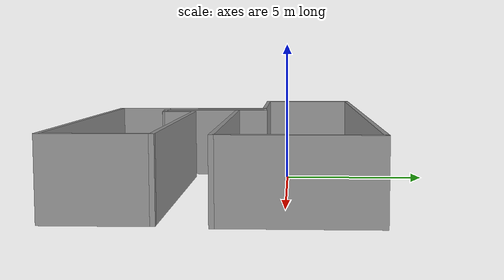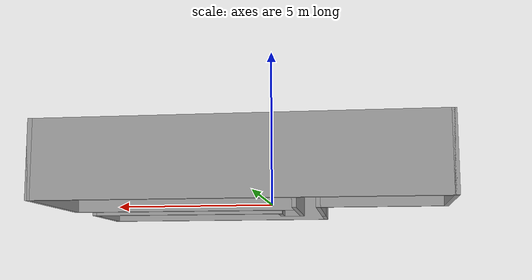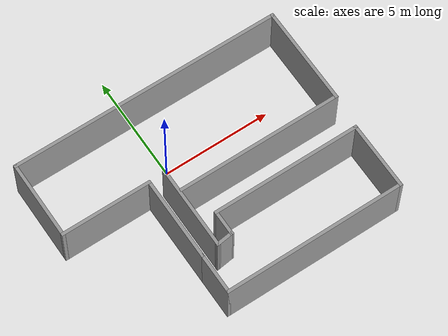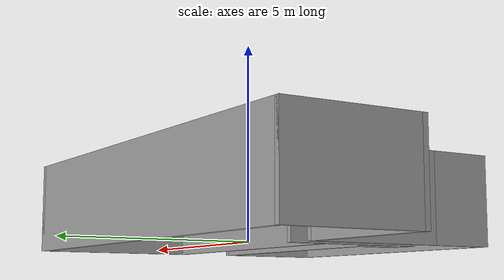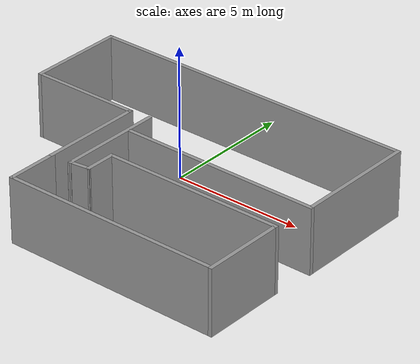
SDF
<?xml version='1.0'?>
<sdf version='1.7'>
  <model name='thin_wall_2'>
    <pose>0.79 -1.98 0 0 -0 0</pose>
    <link name='Wall_0'>
      <collision name='Wall_0_Collision'>
        <geometry>
          <box>
            <size>4 0.15 2.5</size>
          </box>
        </geometry>
        <pose>0 0 1.25 0 -0 0</pose>
      </collision>
      <visual name='Wall_0_Visual'>
        <pose>0 0 1.25 0 -0 0</pose>
        <geometry>
          <box>
            <size>4 0.15 2.5</size>
          </box>
        </geometry>
        <material>
          <script>
            <uri>file://media/materials/scripts/gazebo.material</uri>
            <name>Gazebo/Grey</name>
          </script>
          <ambient>1 1 1 1</ambient>
        </material>
        <meta>
          <layer>0</layer>
        </meta>
      </visual>
      <pose>-2.2 -0.875 0 0 -0 -1.5708</pose>
    </link>
    <link name='Wall_10'>
      <collision name='Wall_10_Collision'>
        <geometry>
          <box>
            <size>3.25 0.15 2.5</size>
          </box>
        </geometry>
        <pose>0 0 1.25 0 -0 0</pose>
      </collision>
      <visual name='Wall_10_Visual'>
        <pose>0 0 1.25 0 -0 0</pose>
        <geometry>
          <box>
            <size>3.25 0.15 2.5</size>
          </box>
        </geometry>
        <material>
          <script>
            <uri>file://media/materials/scripts/gazebo.material</uri>
            <name>Gazebo/Grey</name>
          </script>
          <ambient>1 1 1 1</ambient>
        </material>
        <meta>
          <layer>0</layer>
        </meta>
      </visual>
      <pose>6.15 -3.1 0 0 -0 1.5708</pose>
    </link>
    <link name='Wall_11'>
      <collision name='Wall_11_Collision'>
        <geometry>
          <box>
            <size>7 0.15 2.5</size>
          </box>
        </geometry>
        <pose>0 0 1.25 0 -0 0</pose>
      </collision>
      <visual name='Wall_11_Visual'>
        <pose>0 0 1.25 0 -0 0</pose>
        <geometry>
          <box>
            <size>7 0.15 2.5</size>
          </box>
        </geometry>
        <material>
          <script>
            <uri>file://media/materials/scripts/gazebo.material</uri>
            <name>Gazebo/Grey</name>
          </script>
          <ambient>1 1 1 1</ambient>
        </material>
        <meta>
          <layer>0</layer>
        </meta>
      </visual>
      <pose>2.725 -1.55 0 0 -0 3.14159</pose>
    </link>
    <link name='Wall_12'>
      <collision name='Wall_12_Collision'>
        <geometry>
          <box>
            <size>1.25 0.15 2.5</size>
          </box>
        </geometry>
        <pose>0 0 1.25 0 -0 0</pose>
      </collision>
      <visual name='Wall_12_Visual'>
        <pose>0 0 1.25 0 -0 0</pose>
        <geometry>
          <box>
            <size>1.25 0.15 2.5</size>
          </box>
        </geometry>
        <material>
          <script>
            <uri>file://media/materials/scripts/gazebo.material</uri>
            <name>Gazebo/Grey</name>
          </script>
          <ambient>1 1 1 1</ambient>
        </material>
        <meta>
          <layer>0</layer>
        </meta>
      </visual>
      <pose>-0.7 -2.1 0 0 -0 -1.5708</pose>
    </link>
    <link name='Wall_13'>
      <collision name='Wall_13_Collision'>
        <geometry>
          <box>
            <size>0.865681 0.15 2.5</size>
          </box>
        </geometry>
        <pose>0 0 1.25 0 -0 0</pose>
      </collision>
      <visual name='Wall_13_Visual'>
        <pose>0 0 1.25 0 -0 0</pose>
        <geometry>
          <box>
            <size>0.865681 0.15 2.5</size>
          </box>
        </geometry>
        <material>
          <script>
            <uri>file://media/materials/scripts/gazebo.material</uri>
            <name>Gazebo/Grey</name>
          </script>
          <ambient>1 1 1 1</ambient>
        </material>
        <meta>
          <layer>0</layer>
        </meta>
      </visual>
      <pose>-1.055 -2.695 0 0 -0 -3.01551</pose>
    </link>
    <link name='Wall_15'>
      <collision name='Wall_15_Collision'>
        <geometry>
          <box>
            <size>4.25 0.15 2.5</size>
          </box>
        </geometry>
        <pose>0 0 1.25 0 -0 0</pose>
      </collision>
      <visual name='Wall_15_Visual'>
        <pose>0 0 1.25 0 -0 0</pose>
        <geometry>
          <box>
            <size>4.25 0.15 2.5</size>
          </box>
        </geometry>
        <material>
          <script>
            <uri>file://media/materials/scripts/gazebo.material</uri>
            <name>Gazebo/Grey</name>
          </script>
          <ambient>1 1 1 1</ambient>
        </material>
        <meta>
          <layer>0</layer>
        </meta>
      </visual>
      <pose>-4.25 1.05 0 0 -0 3.14159</pose>
    </link>
    <link name='Wall_16'>
      <collision name='Wall_16_Collision'>
        <geometry>
          <box>
            <size>3.75 0.15 2.5</size>
          </box>
        </geometry>
        <pose>0 0 1.25 0 -0 0</pose>
      </collision>
      <visual name='Wall_16_Visual'>
        <pose>0 0 1.25 0 -0 0</pose>
        <geometry>
          <box>
            <size>3.75 0.15 2.5</size>
          </box>
        </geometry>
        <material>
          <script>
            <uri>file://media/materials/scripts/gazebo.material</uri>
            <name>Gazebo/Grey</name>
          </script>
          <ambient>1 1 1 1</ambient>
        </material>
        <meta>
          <layer>0</layer>
        </meta>
      </visual>
      <pose>-6.3 2.85 0 0 -0 1.5708</pose>
    </link>
    <link name='Wall_17'>
      <collision name='Wall_17_Collision'>
        <geometry>
          <box>
            <size>12.75 0.15 2.5</size>
          </box>
        </geometry>
        <pose>0 0 1.25 0 -0 0</pose>
      </collision>
      <visual name='Wall_17_Visual'>
        <pose>0 0 1.25 0 -0 0</pose>
        <geometry>
          <box>
            <size>12.75 0.15 2.5</size>
          </box>
        </geometry>
        <material>
          <script>
            <uri>file://media/materials/scripts/gazebo.material</uri>
            <name>Gazebo/Grey</name>
          </script>
          <ambient>1 1 1 1</ambient>
        </material>
        <meta>
          <layer>0</layer>
        </meta>
      </visual>
      <pose>0 4.65 0 0 -0 0</pose>
    </link>
    <link name='Wall_18'>
      <collision name='Wall_18_Collision'>
        <geometry>
          <box>
            <size>4.75 0.15 2.5</size>
          </box>
        </geometry>
        <pose>0 0 1.25 0 -0 0</pose>
      </collision>
      <visual name='Wall_18_Visual'>
        <pose>0 0 1.25 0 -0 0</pose>
        <geometry>
          <box>
            <size>4.75 0.15 2.5</size>
          </box>
        </geometry>
        <material>
          <script>
            <uri>file://media/materials/scripts/gazebo.material</uri>
            <name>Gazebo/Grey</name>
          </script>
          <ambient>1 1 1 1</ambient>
        </material>
        <meta>
          <layer>0</layer>
        </meta>
      </visual>
      <pose>6.3 2.35 0 0 -0 -1.5708</pose>
    </link>
    <link name='Wall_19'>
      <collision name='Wall_19_Collision'>
        <geometry>
          <box>
            <size>7.75 0.15 2.5</size>
          </box>
        </geometry>
        <pose>0 0 1.25 0 -0 0</pose>
      </collision>
      <visual name='Wall_19_Visual'>
        <pose>0 0 1.25 0 -0 0</pose>
        <geometry>
          <box>
            <size>7.75 0.15 2.5</size>
          </box>
        </geometry>
        <material>
          <script>
            <uri>file://media/materials/scripts/gazebo.material</uri>
            <name>Gazebo/Grey</name>
          </script>
          <ambient>1 1 1 1</ambient>
        </material>
        <meta>
          <layer>0</layer>
        </meta>
      </visual>
      <pose>2.5 0.05 0 0 -0 3.14159</pose>
    </link>
    <link name='Wall_4'>
      <collision name='Wall_4_Collision'>
        <geometry>
          <box>
            <size>4 0.15 2.5</size>
          </box>
        </geometry>
        <pose>0 0 1.25 0 -0 0</pose>
      </collision>
      <visual name='Wall_4_Visual'>
        <pose>0 0 1.25 0 -0 0</pose>
        <geometry>
          <box>
            <size>4 0.15 2.5</size>
          </box>
        </geometry>
        <material>
          <script>
            <uri>file://media/materials/scripts/gazebo.material</uri>
            <name>Gazebo/Grey</name>
          </script>
          <ambient>1 1 1 1</ambient>
        </material>
        <meta>
          <layer>0</layer>
        </meta>
      </visual>
      <pose>-1.41 -0.815 0 0 -0 -1.5708</pose>
    </link>
    <link name='Wall_6'>
      <collision name='Wall_6_Collision'>
        <geometry>
          <box>
            <size>2 0.15 2.5</size>
          </box>
        </geometry>
        <pose>0 0 1.25 0 -0 0</pose>
      </collision>
      <visual name='Wall_6_Visual'>
        <pose>0 0 1.25 0 -0 0</pose>
        <geometry>
          <box>
            <size>2 0.15 2.5</size>
          </box>
        </geometry>
        <material>
          <script>
            <uri>file://media/materials/scripts/gazebo.material</uri>
            <name>Gazebo/Grey</name>
          </script>
          <ambient>1 1 1 1</ambient>
        </material>
        <meta>
          <layer>0</layer>
        </meta>
      </visual>
      <pose>-2.2 -3.725 0 0 -0 -1.5708</pose>
    </link>
    <link name='Wall_7'>
      <collision name='Wall_7_Collision'>
        <geometry>
          <box>
            <size>8.5 0.15 2.5</size>
          </box>
        </geometry>
        <pose>0 0 1.25 0 -0 0</pose>
      </collision>
      <visual name='Wall_7_Visual'>
        <pose>0 0 1.25 0 -0 0</pose>
        <geometry>
          <box>
            <size>8.5 0.15 2.5</size>
          </box>
        </geometry>
        <material>
          <script>
            <uri>file://media/materials/scripts/gazebo.material</uri>
            <name>Gazebo/Grey</name>
          </script>
          <ambient>1 1 1 1</ambient>
        </material>
        <meta>
          <layer>0</layer>
        </meta>
      </visual>
      <pose>1.975 -4.65 0 0 -0 0</pose>
    </link>
    <static>1</static>
  </model>
</sdf>
